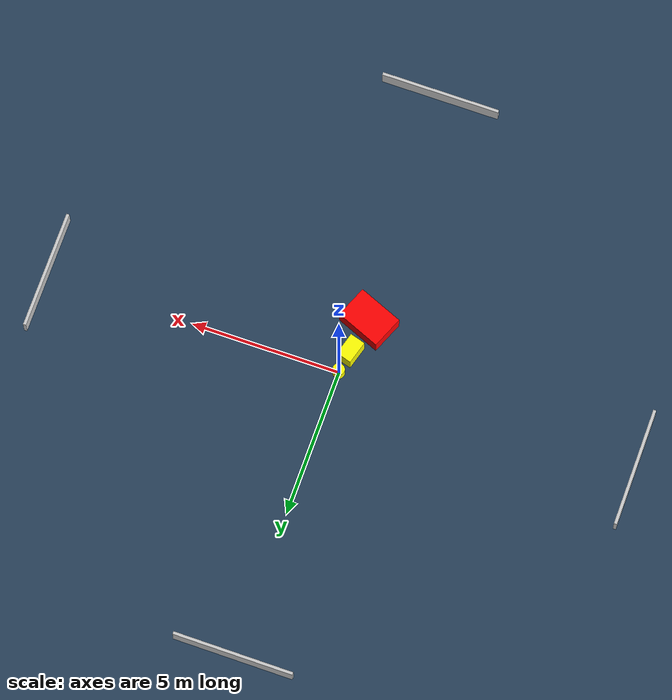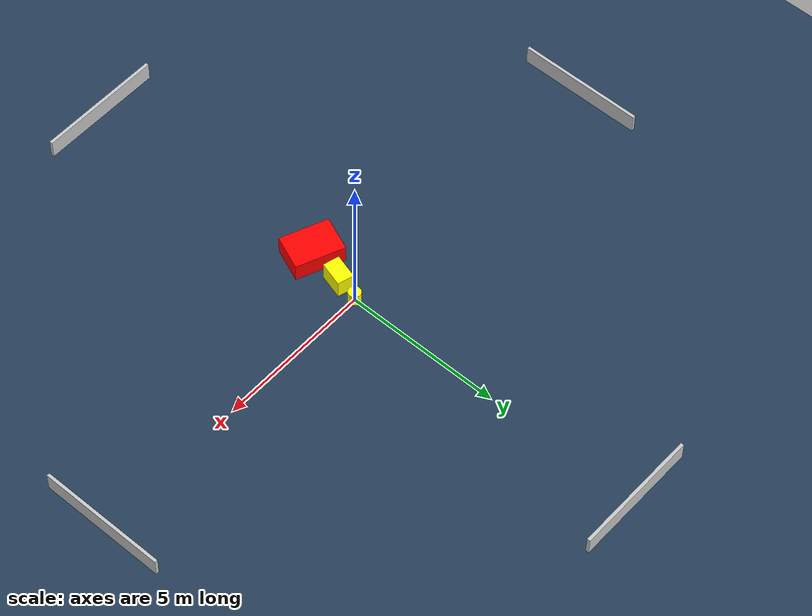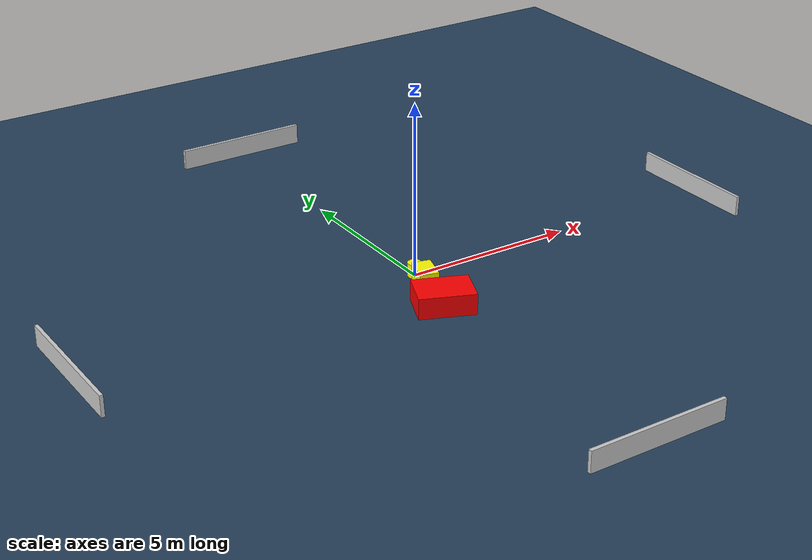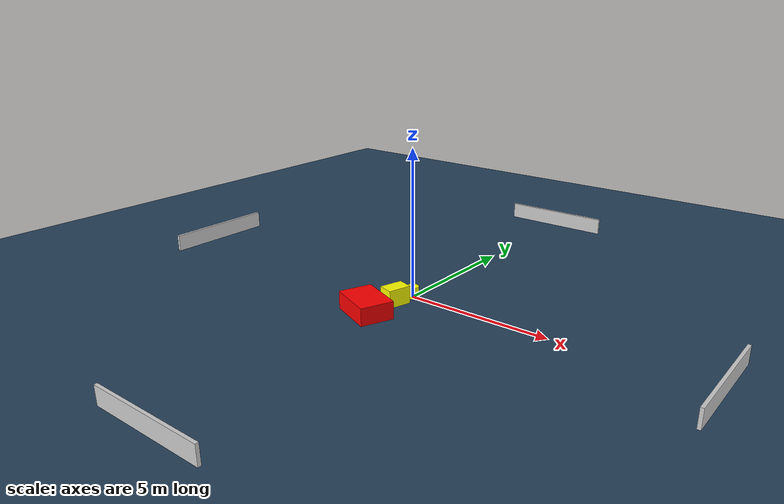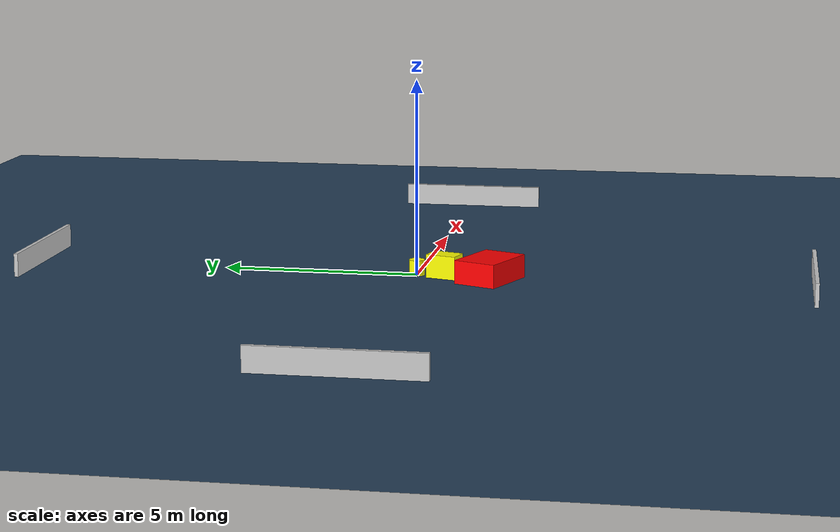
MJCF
<?xml version="1.0" ?>
<mujoco model="generated_environment">
  <option timestep="0.01" integrator="RK4" cone="elliptic"/>
  <default>
    <geom density="1"/>
  </default>
  <asset>
    <texture builtin="gradient" height="3072" name="skybox" rgb1="0.3 0.5 0.7" rgb2="0 0 0" type="skybox" width="512"/>
    <texture builtin="checker" height="300" name="groundplane" rgb1="0.2 0.3 0.4" rgb2="0.1 0.2 0.3" type="2d" width="300"/>
    <material name="groundplane" reflectance="0.2" texrepeat="5 5" texture="groundplane"/>
  </asset>
  <worldbody>
    <light dir="0 0 -1" directional="true" pos="0 0 1.5"/>
    <geom condim="3" friction="0.5 0.005 0.001" material="groundplane" name="floor" pos="0 0 0" size="0 0 0.05" type="plane"/>
    <body name="walls">
      <geom name="wall_1" condim="4" pos="-10.0 0.0 0.3" rgba="0.800000011920929 0.800000011920929 0.800000011920929 1.0" size="0.05 2.0 0.3" type="box"/>
      <geom name="wall_2" condim="4" pos="10.0 0.0 0.3" rgba="0.800000011920929 0.800000011920929 0.800000011920929 1.0" size="0.05 2.0 0.3" type="box"/>
      <geom name="wall_3" condim="4" pos="0.0 -10.0 0.3" rgba="0.800000011920929 0.800000011920929 0.800000011920929 1.0" size="2.0 0.05 0.3" type="box"/>
      <geom name="wall_4" condim="4" pos="0.0 10.0 0.3" rgba="0.800000011920929 0.800000011920929 0.800000011920929 1.0" size="2.0 0.05 0.3" type="box"/>
    </body>
    <body name="robot">
      <joint name="joint_x" type="slide" pos="0 0 0" axis="1 0 0"/>
      <joint name="joint_y" type="slide" pos="0 0 0" axis="0 1 0"/>
      <geom name="robot" type="cylinder" pos="0.0 0.0 0.2" size="0.2 0.2 0.0" mass="5.0" friction="1.0 0.005 0.0001" condim="4" rgba="1.0 1.0 0.0 1.0"/>
    </body>
    <body name="obstacle_1_movable">
      <geom name="obstacle_1_movable" condim="4" pos="-0.1457746774622156 -0.7365422444039106 0.3" euler="0 0 73.87945746772836" friction="0.0 0.005 0.001" rgba="1.0 1.0 0.0 1.0" size="0.3954045791967032 0.2637413535511608 0.3" type="box" mass="0.1"/>
      <joint type="free"/>
    </body>
    <body name="obstacle_2_static">
      <geom name="obstacle_2_static" condim="4" pos="-0.36095405136359604 -1.9258995160346466 0.3" euler="0 0 337.7077381292202" friction="0.0 0.005 0.001" rgba="1.0 0.0 0.0 1.0" size="0.7855054755156121 0.564016289114599 0.3" type="box"/>
    </body>
  </worldbody>
  <actuator>
    <motor name="actuator_x" joint="joint_x" gear="1" ctrlrange="-1 1"/>
    <motor name="actuator_y" joint="joint_y" gear="1" ctrlrange="-1 1"/>
  </actuator>
</mujoco>
